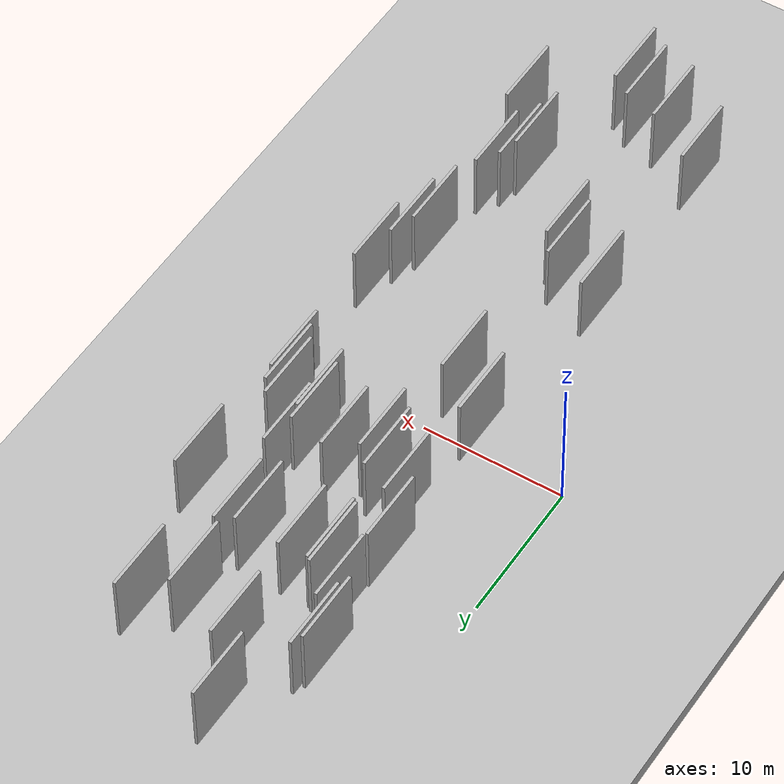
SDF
<?xml version="1.0" encoding="utf-8"?>

<sdf version="1.6">

   <world name="default">

      <gui fullscreen="0">

         <camera name="user_camera">

            <pose>-15 0 4.57585 0 0 0</pose>

            <view_controller>orbit</view_controller>

         </camera>

      </gui>

      <scene>

         <sky>

           <clouds>

             <speed>12</speed>

           </clouds>

         </sky>

         <ambient>0.4 0.4 0.4 1</ambient>

         <background>0.7 0.7 0.7 1</background>

         <shadows>1</shadows>

      </scene>

      <gravity>0 0 -9.8066</gravity>

      <magnetic_field>6e-06 2.3e-05 -4.2e-05</magnetic_field>

      <physics default="0" name="default_physics" type="ode">

         <ode>

            <solver>

               <type>quick</type>

               <iters>10</iters>

               <sor>1.0</sor>

               <use_dynamic_moi_rescaling>0</use_dynamic_moi_rescaling>

            </solver>

            <constraints>

               <cfm>0</cfm>

               <erp>0.2</erp>

               <contact_max_correcting_vel>100</contact_max_correcting_vel>

               <contact_surface_layer>0.001</contact_surface_layer>

            </constraints>

         </ode>

         <max_step_size>0.004</max_step_size>

         <real_time_factor>1</real_time_factor>

         <real_time_update_rate>250</real_time_update_rate>

      </physics>

      <light name="sun" type="directional">

         <cast_shadows>1</cast_shadows>

         <pose>0 0 10 0 0 0</pose>

         <diffuse>0.8 0.8 0.8 1</diffuse>

         <specular>0.2 0.2 0.2 1</specular>

         <attenuation>

            <range>1000</range>

            <constant>0.9</constant>

            <linear>0.01</linear>

            <quadratic>0.001</quadratic>

         </attenuation>

         <direction>-0.5 0.1 -0.9</direction>

      </light>

      <include>

         <name>ground_plane_1</name>

         <uri>model://HANNAS_ground_plane</uri>

         <pose>0 0 0  0 0 0</pose>

      </include>

      <include>

         <name>ground_plane_2</name>

         <uri>model://HANNAS_ground_plane</uri>

         <pose>100 0 0  0 0 0</pose>

      </include>

      <model name="HANNAS_wall_1">

         <static>1</static>

         <pose frame="">14.5631 23.2914 5.0 0.000000 0.000000 1.570796</pose>

         <link name="link">

            <pose frame="">0 0 2.50 0 0 0</pose>

            <collision name="collision">

               <geometry>

                  <box>

                     <size>5.00 0.2 5.00</size>

                  </box>

               </geometry>

               <max_contacts>10</max_contacts>

               <surface>

                  <contact>

                     <ode/>

                  </contact>

                  <bounce/>

                  <friction>

                     <torsional>

                        <ode/>

                     </torsional>

                     <ode/>

                  </friction>

               </surface>

            </collision>

            <visual name="visual">

               <cast_shadows>0</cast_shadows>

               <geometry>

                  <box>

                     <size>5.00 0.2 5.00</size>

                  </box>

               </geometry>

               <material>

                  <script>

                     <uri>model://HANNAS_wall/materials/scripts</uri>

                     <uri>model://HANNAS_wall/materials/textures</uri>

                     <name>vrc/HANNAS_wall</name>

                  </script>

               </material>

            </visual>

            <self_collide>0</self_collide>

            <enable_wind>0</enable_wind>

            <kinematic>0</kinematic>

         </link>

      </model>

      <model name="HANNAS_wall_2">

         <static>1</static>

         <pose frame="">6.7429 -11.4230 5.0 0.000000 0.000000 1.570796</pose>

         <link name="link">

            <pose frame="">0 0 2.50 0 0 0</pose>

            <collision name="collision">

               <geometry>

                  <box>

                     <size>5.00 0.2 5.00</size>

                  </box>

               </geometry>

               <max_contacts>10</max_contacts>

               <surface>

                  <contact>

                     <ode/>

                  </contact>

                  <bounce/>

                  <friction>

                     <torsional>

                        <ode/>

                     </torsional>

                     <ode/>

                  </friction>

               </surface>

            </collision>

            <visual name="visual">

               <cast_shadows>0</cast_shadows>

               <geometry>

                  <box>

                     <size>5.00 0.2 5.00</size>

                  </box>

               </geometry>

               <material>

                  <script>

                     <uri>model://HANNAS_wall/materials/scripts</uri>

                     <uri>model://HANNAS_wall/materials/textures</uri>

                     <name>vrc/HANNAS_wall</name>

                  </script>

               </material>

            </visual>

            <self_collide>0</self_collide>

            <enable_wind>0</enable_wind>

            <kinematic>0</kinematic>

         </link>

      </model>

      <model name="HANNAS_wall_3">

         <static>1</static>

         <pose frame="">4.2946 12.6466 5.0 0.000000 0.000000 1.570796</pose>

         <link name="link">

            <pose frame="">0 0 2.50 0 0 0</pose>

            <collision name="collision">

               <geometry>

                  <box>

                     <size>5.00 0.2 5.00</size>

                  </box>

               </geometry>

               <max_contacts>10</max_contacts>

               <surface>

                  <contact>

                     <ode/>

                  </contact>

                  <bounce/>

                  <friction>

                     <torsional>

                        <ode/>

                     </torsional>

                     <ode/>

                  </friction>

               </surface>

            </collision>

            <visual name="visual">

               <cast_shadows>0</cast_shadows>

               <geometry>

                  <box>

                     <size>5.00 0.2 5.00</size>

                  </box>

               </geometry>

               <material>

                  <script>

                     <uri>model://HANNAS_wall/materials/scripts</uri>

                     <uri>model://HANNAS_wall/materials/textures</uri>

                     <name>vrc/HANNAS_wall</name>

                  </script>

               </material>

            </visual>

            <self_collide>0</self_collide>

            <enable_wind>0</enable_wind>

            <kinematic>0</kinematic>

         </link>

      </model>

      <model name="HANNAS_wall_4">

         <static>1</static>

         <pose frame="">13.0444 6.7686 5.0 0.000000 0.000000 1.570796</pose>

         <link name="link">

            <pose frame="">0 0 2.50 0 0 0</pose>

            <collision name="collision">

               <geometry>

                  <box>

                     <size>5.00 0.2 5.00</size>

                  </box>

               </geometry>

               <max_contacts>10</max_contacts>

               <surface>

                  <contact>

                     <ode/>

                  </contact>

                  <bounce/>

                  <friction>

                     <torsional>

                        <ode/>

                     </torsional>

                     <ode/>

                  </friction>

               </surface>

            </collision>

            <visual name="visual">

               <cast_shadows>0</cast_shadows>

               <geometry>

                  <box>

                     <size>5.00 0.2 5.00</size>

                  </box>

               </geometry>

               <material>

                  <script>

                     <uri>model://HANNAS_wall/materials/scripts</uri>

                     <uri>model://HANNAS_wall/materials/textures</uri>

                     <name>vrc/HANNAS_wall</name>

                  </script>

               </material>

            </visual>

            <self_collide>0</self_collide>

            <enable_wind>0</enable_wind>

            <kinematic>0</kinematic>

         </link>

      </model>

      <model name="HANNAS_wall_5">

         <static>1</static>

         <pose frame="">8.2656 7.3176 5.0 0.000000 0.000000 1.570796</pose>

         <link name="link">

            <pose frame="">0 0 2.50 0 0 0</pose>

            <collision name="collision">

               <geometry>

                  <box>

                     <size>5.00 0.2 5.00</size>

                  </box>

               </geometry>

               <max_contacts>10</max_contacts>

               <surface>

                  <contact>

                     <ode/>

                  </contact>

                  <bounce/>

                  <friction>

                     <torsional>

                        <ode/>

                     </torsional>

                     <ode/>

                  </friction>

               </surface>

            </collision>

            <visual name="visual">

               <cast_shadows>0</cast_shadows>

               <geometry>

                  <box>

                     <size>5.00 0.2 5.00</size>

                  </box>

               </geometry>

               <material>

                  <script>

                     <uri>model://HANNAS_wall/materials/scripts</uri>

                     <uri>model://HANNAS_wall/materials/textures</uri>

                     <name>vrc/HANNAS_wall</name>

                  </script>

               </material>

            </visual>

            <self_collide>0</self_collide>

            <enable_wind>0</enable_wind>

            <kinematic>0</kinematic>

         </link>

      </model>

      <model name="HANNAS_wall_6">

         <static>1</static>

         <pose frame="">10.2420 8.4115 5.0 0.000000 0.000000 1.570796</pose>

         <link name="link">

            <pose frame="">0 0 2.50 0 0 0</pose>

            <collision name="collision">

               <geometry>

                  <box>

                     <size>5.00 0.2 5.00</size>

                  </box>

               </geometry>

               <max_contacts>10</max_contacts>

               <surface>

                  <contact>

                     <ode/>

                  </contact>

                  <bounce/>

                  <friction>

                     <torsional>

                        <ode/>

                     </torsional>

                     <ode/>

                  </friction>

               </surface>

            </collision>

            <visual name="visual">

               <cast_shadows>0</cast_shadows>

               <geometry>

                  <box>

                     <size>5.00 0.2 5.00</size>

                  </box>

               </geometry>

               <material>

                  <script>

                     <uri>model://HANNAS_wall/materials/scripts</uri>

                     <uri>model://HANNAS_wall/materials/textures</uri>

                     <name>vrc/HANNAS_wall</name>

                  </script>

               </material>

            </visual>

            <self_collide>0</self_collide>

            <enable_wind>0</enable_wind>

            <kinematic>0</kinematic>

         </link>

      </model>

      <model name="HANNAS_wall_7">

         <static>1</static>

         <pose frame="">15.1976 -9.4629 5.0 0.000000 0.000000 1.570796</pose>

         <link name="link">

            <pose frame="">0 0 2.50 0 0 0</pose>

            <collision name="collision">

               <geometry>

                  <box>

                     <size>5.00 0.2 5.00</size>

                  </box>

               </geometry>

               <max_contacts>10</max_contacts>

               <surface>

                  <contact>

                     <ode/>

                  </contact>

                  <bounce/>

                  <friction>

                     <torsional>

                        <ode/>

                     </torsional>

                     <ode/>

                  </friction>

               </surface>

            </collision>

            <visual name="visual">

               <cast_shadows>0</cast_shadows>

               <geometry>

                  <box>

                     <size>5.00 0.2 5.00</size>

                  </box>

               </geometry>

               <material>

                  <script>

                     <uri>model://HANNAS_wall/materials/scripts</uri>

                     <uri>model://HANNAS_wall/materials/textures</uri>

                     <name>vrc/HANNAS_wall</name>

                  </script>

               </material>

            </visual>

            <self_collide>0</self_collide>

            <enable_wind>0</enable_wind>

            <kinematic>0</kinematic>

         </link>

      </model>

      <model name="HANNAS_wall_8">

         <static>1</static>

         <pose frame="">10.8056 -26.3976 5.0 0.000000 0.000000 1.570796</pose>

         <link name="link">

            <pose frame="">0 0 2.50 0 0 0</pose>

            <collision name="collision">

               <geometry>

                  <box>

                     <size>5.00 0.2 5.00</size>

                  </box>

               </geometry>

               <max_contacts>10</max_contacts>

               <surface>

                  <contact>

                     <ode/>

                  </contact>

                  <bounce/>

                  <friction>

                     <torsional>

                        <ode/>

                     </torsional>

                     <ode/>

                  </friction>

               </surface>

            </collision>

            <visual name="visual">

               <cast_shadows>0</cast_shadows>

               <geometry>

                  <box>

                     <size>5.00 0.2 5.00</size>

                  </box>

               </geometry>

               <material>

                  <script>

                     <uri>model://HANNAS_wall/materials/scripts</uri>

                     <uri>model://HANNAS_wall/materials/textures</uri>

                     <name>vrc/HANNAS_wall</name>

                  </script>

               </material>

            </visual>

            <self_collide>0</self_collide>

            <enable_wind>0</enable_wind>

            <kinematic>0</kinematic>

         </link>

      </model>

      <model name="HANNAS_wall_9">

         <static>1</static>

         <pose frame="">6.0921 15.9930 5.0 0.000000 0.000000 1.570796</pose>

         <link name="link">

            <pose frame="">0 0 2.50 0 0 0</pose>

            <collision name="collision">

               <geometry>

                  <box>

                     <size>5.00 0.2 5.00</size>

                  </box>

               </geometry>

               <max_contacts>10</max_contacts>

               <surface>

                  <contact>

                     <ode/>

                  </contact>

                  <bounce/>

                  <friction>

                     <torsional>

                        <ode/>

                     </torsional>

                     <ode/>

                  </friction>

               </surface>

            </collision>

            <visual name="visual">

               <cast_shadows>0</cast_shadows>

               <geometry>

                  <box>

                     <size>5.00 0.2 5.00</size>

                  </box>

               </geometry>

               <material>

                  <script>

                     <uri>model://HANNAS_wall/materials/scripts</uri>

                     <uri>model://HANNAS_wall/materials/textures</uri>

                     <name>vrc/HANNAS_wall</name>

                  </script>

               </material>

            </visual>

            <self_collide>0</self_collide>

            <enable_wind>0</enable_wind>

            <kinematic>0</kinematic>

         </link>

      </model>

      <model name="HANNAS_wall_10">

         <static>1</static>

         <pose frame="">7.0727 -24.7977 5.0 0.000000 0.000000 1.570796</pose>

         <link name="link">

            <pose frame="">0 0 2.50 0 0 0</pose>

            <collision name="collision">

               <geometry>

                  <box>

                     <size>5.00 0.2 5.00</size>

                  </box>

               </geometry>

               <max_contacts>10</max_contacts>

               <surface>

                  <contact>

                     <ode/>

                  </contact>

                  <bounce/>

                  <friction>

                     <torsional>

                        <ode/>

                     </torsional>

                     <ode/>

                  </friction>

               </surface>

            </collision>

            <visual name="visual">

               <cast_shadows>0</cast_shadows>

               <geometry>

                  <box>

                     <size>5.00 0.2 5.00</size>

                  </box>

               </geometry>

               <material>

                  <script>

                     <uri>model://HANNAS_wall/materials/scripts</uri>

                     <uri>model://HANNAS_wall/materials/textures</uri>

                     <name>vrc/HANNAS_wall</name>

                  </script>

               </material>

            </visual>

            <self_collide>0</self_collide>

            <enable_wind>0</enable_wind>

            <kinematic>0</kinematic>

         </link>

      </model>

      <model name="HANNAS_wall_11">

         <static>1</static>

         <pose frame="">12.7846 7.7467 5.0 0.000000 0.000000 1.570796</pose>

         <link name="link">

            <pose frame="">0 0 2.50 0 0 0</pose>

            <collision name="collision">

               <geometry>

                  <box>

                     <size>5.00 0.2 5.00</size>

                  </box>

               </geometry>

               <max_contacts>10</max_contacts>

               <surface>

                  <contact>

                     <ode/>

                  </contact>

                  <bounce/>

                  <friction>

                     <torsional>

                        <ode/>

                     </torsional>

                     <ode/>

                  </friction>

               </surface>

            </collision>

            <visual name="visual">

               <cast_shadows>0</cast_shadows>

               <geometry>

                  <box>

                     <size>5.00 0.2 5.00</size>

                  </box>

               </geometry>

               <material>

                  <script>

                     <uri>model://HANNAS_wall/materials/scripts</uri>

                     <uri>model://HANNAS_wall/materials/textures</uri>

                     <name>vrc/HANNAS_wall</name>

                  </script>

               </material>

            </visual>

            <self_collide>0</self_collide>

            <enable_wind>0</enable_wind>

            <kinematic>0</kinematic>

         </link>

      </model>

      <model name="HANNAS_wall_12">

         <static>1</static>

         <pose frame="">12.0679 21.4258 5.0 0.000000 0.000000 1.570796</pose>

         <link name="link">

            <pose frame="">0 0 2.50 0 0 0</pose>

            <collision name="collision">

               <geometry>

                  <box>

                     <size>5.00 0.2 5.00</size>

                  </box>

               </geometry>

               <max_contacts>10</max_contacts>

               <surface>

                  <contact>

                     <ode/>

                  </contact>

                  <bounce/>

                  <friction>

                     <torsional>

                        <ode/>

                     </torsional>

                     <ode/>

                  </friction>

               </surface>

            </collision>

            <visual name="visual">

               <cast_shadows>0</cast_shadows>

               <geometry>

                  <box>

                     <size>5.00 0.2 5.00</size>

                  </box>

               </geometry>

               <material>

                  <script>

                     <uri>model://HANNAS_wall/materials/scripts</uri>

                     <uri>model://HANNAS_wall/materials/textures</uri>

                     <name>vrc/HANNAS_wall</name>

                  </script>

               </material>

            </visual>

            <self_collide>0</self_collide>

            <enable_wind>0</enable_wind>

            <kinematic>0</kinematic>

         </link>

      </model>

      <model name="HANNAS_wall_13">

         <static>1</static>

         <pose frame="">5.2970 9.3334 5.0 0.000000 0.000000 1.570796</pose>

         <link name="link">

            <pose frame="">0 0 2.50 0 0 0</pose>

            <collision name="collision">

               <geometry>

                  <box>

                     <size>5.00 0.2 5.00</size>

                  </box>

               </geometry>

               <max_contacts>10</max_contacts>

               <surface>

                  <contact>

                     <ode/>

                  </contact>

                  <bounce/>

                  <friction>

                     <torsional>

                        <ode/>

                     </torsional>

                     <ode/>

                  </friction>

               </surface>

            </collision>

            <visual name="visual">

               <cast_shadows>0</cast_shadows>

               <geometry>

                  <box>

                     <size>5.00 0.2 5.00</size>

                  </box>

               </geometry>

               <material>

                  <script>

                     <uri>model://HANNAS_wall/materials/scripts</uri>

                     <uri>model://HANNAS_wall/materials/textures</uri>

                     <name>vrc/HANNAS_wall</name>

                  </script>

               </material>

            </visual>

            <self_collide>0</self_collide>

            <enable_wind>0</enable_wind>

            <kinematic>0</kinematic>

         </link>

      </model>

      <model name="HANNAS_wall_14">

         <static>1</static>

         <pose frame="">7.2584 8.3794 5.0 0.000000 0.000000 1.570796</pose>

         <link name="link">

            <pose frame="">0 0 2.50 0 0 0</pose>

            <collision name="collision">

               <geometry>

                  <box>

                     <size>5.00 0.2 5.00</size>

                  </box>

               </geometry>

               <max_contacts>10</max_contacts>

               <surface>

                  <contact>

                     <ode/>

                  </contact>

                  <bounce/>

                  <friction>

                     <torsional>

                        <ode/>

                     </torsional>

                     <ode/>

                  </friction>

               </surface>

            </collision>

            <visual name="visual">

               <cast_shadows>0</cast_shadows>

               <geometry>

                  <box>

                     <size>5.00 0.2 5.00</size>

                  </box>

               </geometry>

               <material>

                  <script>

                     <uri>model://HANNAS_wall/materials/scripts</uri>

                     <uri>model://HANNAS_wall/materials/textures</uri>

                     <name>vrc/HANNAS_wall</name>

                  </script>

               </material>

            </visual>

            <self_collide>0</self_collide>

            <enable_wind>0</enable_wind>

            <kinematic>0</kinematic>

         </link>

      </model>

      <model name="HANNAS_wall_15">

         <static>1</static>

         <pose frame="">8.0335 23.1206 5.0 0.000000 0.000000 1.570796</pose>

         <link name="link">

            <pose frame="">0 0 2.50 0 0 0</pose>

            <collision name="collision">

               <geometry>

                  <box>

                     <size>5.00 0.2 5.00</size>

                  </box>

               </geometry>

               <max_contacts>10</max_contacts>

               <surface>

                  <contact>

                     <ode/>

                  </contact>

                  <bounce/>

                  <friction>

                     <torsional>

                        <ode/>

                     </torsional>

                     <ode/>

                  </friction>

               </surface>

            </collision>

            <visual name="visual">

               <cast_shadows>0</cast_shadows>

               <geometry>

                  <box>

                     <size>5.00 0.2 5.00</size>

                  </box>

               </geometry>

               <material>

                  <script>

                     <uri>model://HANNAS_wall/materials/scripts</uri>

                     <uri>model://HANNAS_wall/materials/textures</uri>

                     <name>vrc/HANNAS_wall</name>

                  </script>

               </material>

            </visual>

            <self_collide>0</self_collide>

            <enable_wind>0</enable_wind>

            <kinematic>0</kinematic>

         </link>

      </model>

      <model name="HANNAS_wall_16">

         <static>1</static>

         <pose frame="">13.5373 -16.8339 5.0 0.000000 0.000000 1.570796</pose>

         <link name="link">

            <pose frame="">0 0 2.50 0 0 0</pose>

            <collision name="collision">

               <geometry>

                  <box>

                     <size>5.00 0.2 5.00</size>

                  </box>

               </geometry>

               <max_contacts>10</max_contacts>

               <surface>

                  <contact>

                     <ode/>

                  </contact>

                  <bounce/>

                  <friction>

                     <torsional>

                        <ode/>

                     </torsional>

                     <ode/>

                  </friction>

               </surface>

            </collision>

            <visual name="visual">

               <cast_shadows>0</cast_shadows>

               <geometry>

                  <box>

                     <size>5.00 0.2 5.00</size>

                  </box>

               </geometry>

               <material>

                  <script>

                     <uri>model://HANNAS_wall/materials/scripts</uri>

                     <uri>model://HANNAS_wall/materials/textures</uri>

                     <name>vrc/HANNAS_wall</name>

                  </script>

               </material>

            </visual>

            <self_collide>0</self_collide>

            <enable_wind>0</enable_wind>

            <kinematic>0</kinematic>

         </link>

      </model>

      <model name="HANNAS_wall_17">

         <static>1</static>

         <pose frame="">12.4964 16.2960 5.0 0.000000 0.000000 1.570796</pose>

         <link name="link">

            <pose frame="">0 0 2.50 0 0 0</pose>

            <collision name="collision">

               <geometry>

                  <box>

                     <size>5.00 0.2 5.00</size>

                  </box>

               </geometry>

               <max_contacts>10</max_contacts>

               <surface>

                  <contact>

                     <ode/>

                  </contact>

                  <bounce/>

                  <friction>

                     <torsional>

                        <ode/>

                     </torsional>

                     <ode/>

                  </friction>

               </surface>

            </collision>

            <visual name="visual">

               <cast_shadows>0</cast_shadows>

               <geometry>

                  <box>

                     <size>5.00 0.2 5.00</size>

                  </box>

               </geometry>

               <material>

                  <script>

                     <uri>model://HANNAS_wall/materials/scripts</uri>

                     <uri>model://HANNAS_wall/materials/textures</uri>

                     <name>vrc/HANNAS_wall</name>

                  </script>

               </material>

            </visual>

            <self_collide>0</self_collide>

            <enable_wind>0</enable_wind>

            <kinematic>0</kinematic>

         </link>

      </model>

      <model name="HANNAS_wall_18">

         <static>1</static>

         <pose frame="">13.1670 -18.1890 5.0 0.000000 0.000000 1.570796</pose>

         <link name="link">

            <pose frame="">0 0 2.50 0 0 0</pose>

            <collision name="collision">

               <geometry>

                  <box>

                     <size>5.00 0.2 5.00</size>

                  </box>

               </geometry>

               <max_contacts>10</max_contacts>

               <surface>

                  <contact>

                     <ode/>

                  </contact>

                  <bounce/>

                  <friction>

                     <torsional>

                        <ode/>

                     </torsional>

                     <ode/>

                  </friction>

               </surface>

            </collision>

            <visual name="visual">

               <cast_shadows>0</cast_shadows>

               <geometry>

                  <box>

                     <size>5.00 0.2 5.00</size>

                  </box>

               </geometry>

               <material>

                  <script>

                     <uri>model://HANNAS_wall/materials/scripts</uri>

                     <uri>model://HANNAS_wall/materials/textures</uri>

                     <name>vrc/HANNAS_wall</name>

                  </script>

               </material>

            </visual>

            <self_collide>0</self_collide>

            <enable_wind>0</enable_wind>

            <kinematic>0</kinematic>

         </link>

      </model>

      <model name="HANNAS_wall_19">

         <static>1</static>

         <pose frame="">4.4450 17.7825 5.0 0.000000 0.000000 1.570796</pose>

         <link name="link">

            <pose frame="">0 0 2.50 0 0 0</pose>

            <collision name="collision">

               <geometry>

                  <box>

                     <size>5.00 0.2 5.00</size>

                  </box>

               </geometry>

               <max_contacts>10</max_contacts>

               <surface>

                  <contact>

                     <ode/>

                  </contact>

                  <bounce/>

                  <friction>

                     <torsional>

                        <ode/>

                     </torsional>

                     <ode/>

                  </friction>

               </surface>

            </collision>

            <visual name="visual">

               <cast_shadows>0</cast_shadows>

               <geometry>

                  <box>

                     <size>5.00 0.2 5.00</size>

                  </box>

               </geometry>

               <material>

                  <script>

                     <uri>model://HANNAS_wall/materials/scripts</uri>

                     <uri>model://HANNAS_wall/materials/textures</uri>

                     <name>vrc/HANNAS_wall</name>

                  </script>

               </material>

            </visual>

            <self_collide>0</self_collide>

            <enable_wind>0</enable_wind>

            <kinematic>0</kinematic>

         </link>

      </model>

      <model name="HANNAS_wall_20">

         <static>1</static>

         <pose frame="">16.7213 14.0943 5.0 0.000000 0.000000 1.570796</pose>

         <link name="link">

            <pose frame="">0 0 2.50 0 0 0</pose>

            <collision name="collision">

               <geometry>

                  <box>

                     <size>5.00 0.2 5.00</size>

                  </box>

               </geometry>

               <max_contacts>10</max_contacts>

               <surface>

                  <contact>

                     <ode/>

                  </contact>

                  <bounce/>

                  <friction>

                     <torsional>

                        <ode/>

                     </torsional>

                     <ode/>

                  </friction>

               </surface>

            </collision>

            <visual name="visual">

               <cast_shadows>0</cast_shadows>

               <geometry>

                  <box>

                     <size>5.00 0.2 5.00</size>

                  </box>

               </geometry>

               <material>

                  <script>

                     <uri>model://HANNAS_wall/materials/scripts</uri>

                     <uri>model://HANNAS_wall/materials/textures</uri>

                     <name>vrc/HANNAS_wall</name>

                  </script>

               </material>

            </visual>

            <self_collide>0</self_collide>

            <enable_wind>0</enable_wind>

            <kinematic>0</kinematic>

         </link>

      </model>

      <model name="HANNAS_wall_21">

         <static>1</static>

         <pose frame="">15.7364 6.0768 5.0 0.000000 0.000000 1.570796</pose>

         <link name="link">

            <pose frame="">0 0 2.50 0 0 0</pose>

            <collision name="collision">

               <geometry>

                  <box>

                     <size>5.00 0.2 5.00</size>

                  </box>

               </geometry>

               <max_contacts>10</max_contacts>

               <surface>

                  <contact>

                     <ode/>

                  </contact>

                  <bounce/>

                  <friction>

                     <torsional>

                        <ode/>

                     </torsional>

                     <ode/>

                  </friction>

               </surface>

            </collision>

            <visual name="visual">

               <cast_shadows>0</cast_shadows>

               <geometry>

                  <box>

                     <size>5.00 0.2 5.00</size>

                  </box>

               </geometry>

               <material>

                  <script>

                     <uri>model://HANNAS_wall/materials/scripts</uri>

                     <uri>model://HANNAS_wall/materials/textures</uri>

                     <name>vrc/HANNAS_wall</name>

                  </script>

               </material>

            </visual>

            <self_collide>0</self_collide>

            <enable_wind>0</enable_wind>

            <kinematic>0</kinematic>

         </link>

      </model>

      <model name="HANNAS_wall_22">

         <static>1</static>

         <pose frame="">9.4288 -25.4288 5.0 0.000000 0.000000 1.570796</pose>

         <link name="link">

            <pose frame="">0 0 2.50 0 0 0</pose>

            <collision name="collision">

               <geometry>

                  <box>

                     <size>5.00 0.2 5.00</size>

                  </box>

               </geometry>

               <max_contacts>10</max_contacts>

               <surface>

                  <contact>

                     <ode/>

                  </contact>

                  <bounce/>

                  <friction>

                     <torsional>

                        <ode/>

                     </torsional>

                     <ode/>

                  </friction>

               </surface>

            </collision>

            <visual name="visual">

               <cast_shadows>0</cast_shadows>

               <geometry>

                  <box>

                     <size>5.00 0.2 5.00</size>

                  </box>

               </geometry>

               <material>

                  <script>

                     <uri>model://HANNAS_wall/materials/scripts</uri>

                     <uri>model://HANNAS_wall/materials/textures</uri>

                     <name>vrc/HANNAS_wall</name>

                  </script>

               </material>

            </visual>

            <self_collide>0</self_collide>

            <enable_wind>0</enable_wind>

            <kinematic>0</kinematic>

         </link>

      </model>

      <model name="HANNAS_wall_23">

         <static>1</static>

         <pose frame="">11.3953 15.7597 5.0 0.000000 0.000000 1.570796</pose>

         <link name="link">

            <pose frame="">0 0 2.50 0 0 0</pose>

            <collision name="collision">

               <geometry>

                  <box>

                     <size>5.00 0.2 5.00</size>

                  </box>

               </geometry>

               <max_contacts>10</max_contacts>

               <surface>

                  <contact>

                     <ode/>

                  </contact>

                  <bounce/>

                  <friction>

                     <torsional>

                        <ode/>

                     </torsional>

                     <ode/>

                  </friction>

               </surface>

            </collision>

            <visual name="visual">

               <cast_shadows>0</cast_shadows>

               <geometry>

                  <box>

                     <size>5.00 0.2 5.00</size>

                  </box>

               </geometry>

               <material>

                  <script>

                     <uri>model://HANNAS_wall/materials/scripts</uri>

                     <uri>model://HANNAS_wall/materials/textures</uri>

                     <name>vrc/HANNAS_wall</name>

                  </script>

               </material>

            </visual>

            <self_collide>0</self_collide>

            <enable_wind>0</enable_wind>

            <kinematic>0</kinematic>

         </link>

      </model>

      <model name="HANNAS_wall_24">

         <static>1</static>

         <pose frame="">14.4527 -15.5074 5.0 0.000000 0.000000 1.570796</pose>

         <link name="link">

            <pose frame="">0 0 2.50 0 0 0</pose>

            <collision name="collision">

               <geometry>

                  <box>

                     <size>5.00 0.2 5.00</size>

                  </box>

               </geometry>

               <max_contacts>10</max_contacts>

               <surface>

                  <contact>

                     <ode/>

                  </contact>

                  <bounce/>

                  <friction>

                     <torsional>

                        <ode/>

                     </torsional>

                     <ode/>

                  </friction>

               </surface>

            </collision>

            <visual name="visual">

               <cast_shadows>0</cast_shadows>

               <geometry>

                  <box>

                     <size>5.00 0.2 5.00</size>

                  </box>

               </geometry>

               <material>

                  <script>

                     <uri>model://HANNAS_wall/materials/scripts</uri>

                     <uri>model://HANNAS_wall/materials/textures</uri>

                     <name>vrc/HANNAS_wall</name>

                  </script>

               </material>

            </visual>

            <self_collide>0</self_collide>

            <enable_wind>0</enable_wind>

            <kinematic>0</kinematic>

         </link>

      </model>

      <model name="HANNAS_wall_25">

         <static>1</static>

         <pose frame="">13.2606 9.9433 5.0 0.000000 0.000000 1.570796</pose>

         <link name="link">

            <pose frame="">0 0 2.50 0 0 0</pose>

            <collision name="collision">

               <geometry>

                  <box>

                     <size>5.00 0.2 5.00</size>

                  </box>

               </geometry>

               <max_contacts>10</max_contacts>

               <surface>

                  <contact>

                     <ode/>

                  </contact>

                  <bounce/>

                  <friction>

                     <torsional>

                        <ode/>

                     </torsional>

                     <ode/>

                  </friction>

               </surface>

            </collision>

            <visual name="visual">

               <cast_shadows>0</cast_shadows>

               <geometry>

                  <box>

                     <size>5.00 0.2 5.00</size>

                  </box>

               </geometry>

               <material>

                  <script>

                     <uri>model://HANNAS_wall/materials/scripts</uri>

                     <uri>model://HANNAS_wall/materials/textures</uri>

                     <name>vrc/HANNAS_wall</name>

                  </script>

               </material>

            </visual>

            <self_collide>0</self_collide>

            <enable_wind>0</enable_wind>

            <kinematic>0</kinematic>

         </link>

      </model>

      <model name="HANNAS_wall_26">

         <static>1</static>

         <pose frame="">16.6094 -4.9504 5.0 0.000000 0.000000 1.570796</pose>

         <link name="link">

            <pose frame="">0 0 2.50 0 0 0</pose>

            <collision name="collision">

               <geometry>

                  <box>

                     <size>5.00 0.2 5.00</size>

                  </box>

               </geometry>

               <max_contacts>10</max_contacts>

               <surface>

                  <contact>

                     <ode/>

                  </contact>

                  <bounce/>

                  <friction>

                     <torsional>

                        <ode/>

                     </torsional>

                     <ode/>

                  </friction>

               </surface>

            </collision>

            <visual name="visual">

               <cast_shadows>0</cast_shadows>

               <geometry>

                  <box>

                     <size>5.00 0.2 5.00</size>

                  </box>

               </geometry>

               <material>

                  <script>

                     <uri>model://HANNAS_wall/materials/scripts</uri>

                     <uri>model://HANNAS_wall/materials/textures</uri>

                     <name>vrc/HANNAS_wall</name>

                  </script>

               </material>

            </visual>

            <self_collide>0</self_collide>

            <enable_wind>0</enable_wind>

            <kinematic>0</kinematic>

         </link>

      </model>

      <model name="HANNAS_wall_27">

         <static>1</static>

         <pose frame="">3.7172 -10.3448 5.0 0.000000 0.000000 1.570796</pose>

         <link name="link">

            <pose frame="">0 0 2.50 0 0 0</pose>

            <collision name="collision">

               <geometry>

                  <box>

                     <size>5.00 0.2 5.00</size>

                  </box>

               </geometry>

               <max_contacts>10</max_contacts>

               <surface>

                  <contact>

                     <ode/>

                  </contact>

                  <bounce/>

                  <friction>

                     <torsional>

                        <ode/>

                     </torsional>

                     <ode/>

                  </friction>

               </surface>

            </collision>

            <visual name="visual">

               <cast_shadows>0</cast_shadows>

               <geometry>

                  <box>

                     <size>5.00 0.2 5.00</size>

                  </box>

               </geometry>

               <material>

                  <script>

                     <uri>model://HANNAS_wall/materials/scripts</uri>

                     <uri>model://HANNAS_wall/materials/textures</uri>

                     <name>vrc/HANNAS_wall</name>

                  </script>

               </material>

            </visual>

            <self_collide>0</self_collide>

            <enable_wind>0</enable_wind>

            <kinematic>0</kinematic>

         </link>

      </model>

      <model name="HANNAS_wall_28">

         <static>1</static>

         <pose frame="">7.4066 -0.4068 5.0 0.000000 0.000000 1.570796</pose>

         <link name="link">

            <pose frame="">0 0 2.50 0 0 0</pose>

            <collision name="collision">

               <geometry>

                  <box>

                     <size>5.00 0.2 5.00</size>

                  </box>

               </geometry>

               <max_contacts>10</max_contacts>

               <surface>

                  <contact>

                     <ode/>

                  </contact>

                  <bounce/>

                  <friction>

                     <torsional>

                        <ode/>

                     </torsional>

                     <ode/>

                  </friction>

               </surface>

            </collision>

            <visual name="visual">

               <cast_shadows>0</cast_shadows>

               <geometry>

                  <box>

                     <size>5.00 0.2 5.00</size>

                  </box>

               </geometry>

               <material>

                  <script>

                     <uri>model://HANNAS_wall/materials/scripts</uri>

                     <uri>model://HANNAS_wall/materials/textures</uri>

                     <name>vrc/HANNAS_wall</name>

                  </script>

               </material>

            </visual>

            <self_collide>0</self_collide>

            <enable_wind>0</enable_wind>

            <kinematic>0</kinematic>

         </link>

      </model>

      <model name="HANNAS_wall_29">

         <static>1</static>

         <pose frame="">3.7788 -22.6810 5.0 0.000000 0.000000 1.570796</pose>

         <link name="link">

            <pose frame="">0 0 2.50 0 0 0</pose>

            <collision name="collision">

               <geometry>

                  <box>

                     <size>5.00 0.2 5.00</size>

                  </box>

               </geometry>

               <max_contacts>10</max_contacts>

               <surface>

                  <contact>

                     <ode/>

                  </contact>

                  <bounce/>

                  <friction>

                     <torsional>

                        <ode/>

                     </torsional>

                     <ode/>

                  </friction>

               </surface>

            </collision>

            <visual name="visual">

               <cast_shadows>0</cast_shadows>

               <geometry>

                  <box>

                     <size>5.00 0.2 5.00</size>

                  </box>

               </geometry>

               <material>

                  <script>

                     <uri>model://HANNAS_wall/materials/scripts</uri>

                     <uri>model://HANNAS_wall/materials/textures</uri>

                     <name>vrc/HANNAS_wall</name>

                  </script>

               </material>

            </visual>

            <self_collide>0</self_collide>

            <enable_wind>0</enable_wind>

            <kinematic>0</kinematic>

         </link>

      </model>

      <model name="HANNAS_wall_30">

         <static>1</static>

         <pose frame="">6.3471 15.8164 5.0 0.000000 0.000000 1.570796</pose>

         <link name="link">

            <pose frame="">0 0 2.50 0 0 0</pose>

            <collision name="collision">

               <geometry>

                  <box>

                     <size>5.00 0.2 5.00</size>

                  </box>

               </geometry>

               <max_contacts>10</max_contacts>

               <surface>

                  <contact>

                     <ode/>

                  </contact>

                  <bounce/>

                  <friction>

                     <torsional>

                        <ode/>

                     </torsional>

                     <ode/>

                  </friction>

               </surface>

            </collision>

            <visual name="visual">

               <cast_shadows>0</cast_shadows>

               <geometry>

                  <box>

                     <size>5.00 0.2 5.00</size>

                  </box>

               </geometry>

               <material>

                  <script>

                     <uri>model://HANNAS_wall/materials/scripts</uri>

                     <uri>model://HANNAS_wall/materials/textures</uri>

                     <name>vrc/HANNAS_wall</name>

                  </script>

               </material>

            </visual>

            <self_collide>0</self_collide>

            <enable_wind>0</enable_wind>

            <kinematic>0</kinematic>

         </link>

      </model>

      <model name="HANNAS_wall_31">

         <static>1</static>

         <pose frame="">15.1636 6.9431 5.0 0.000000 0.000000 1.570796</pose>

         <link name="link">

            <pose frame="">0 0 2.50 0 0 0</pose>

            <collision name="collision">

               <geometry>

                  <box>

                     <size>5.00 0.2 5.00</size>

                  </box>

               </geometry>

               <max_contacts>10</max_contacts>

               <surface>

                  <contact>

                     <ode/>

                  </contact>

                  <bounce/>

                  <friction>

                     <torsional>

                        <ode/>

                     </torsional>

                     <ode/>

                  </friction>

               </surface>

            </collision>

            <visual name="visual">

               <cast_shadows>0</cast_shadows>

               <geometry>

                  <box>

                     <size>5.00 0.2 5.00</size>

                  </box>

               </geometry>

               <material>

                  <script>

                     <uri>model://HANNAS_wall/materials/scripts</uri>

                     <uri>model://HANNAS_wall/materials/textures</uri>

                     <name>vrc/HANNAS_wall</name>

                  </script>

               </material>

            </visual>

            <self_collide>0</self_collide>

            <enable_wind>0</enable_wind>

            <kinematic>0</kinematic>

         </link>

      </model>

      <model name="HANNAS_wall_32">

         <static>1</static>

         <pose frame="">7.6553 -12.8101 5.0 0.000000 0.000000 1.570796</pose>

         <link name="link">

            <pose frame="">0 0 2.50 0 0 0</pose>

            <collision name="collision">

               <geometry>

                  <box>

                     <size>5.00 0.2 5.00</size>

                  </box>

               </geometry>

               <max_contacts>10</max_contacts>

               <surface>

                  <contact>

                     <ode/>

                  </contact>

                  <bounce/>

                  <friction>

                     <torsional>

                        <ode/>

                     </torsional>

                     <ode/>

                  </friction>

               </surface>

            </collision>

            <visual name="visual">

               <cast_shadows>0</cast_shadows>

               <geometry>

                  <box>

                     <size>5.00 0.2 5.00</size>

                  </box>

               </geometry>

               <material>

                  <script>

                     <uri>model://HANNAS_wall/materials/scripts</uri>

                     <uri>model://HANNAS_wall/materials/textures</uri>

                     <name>vrc/HANNAS_wall</name>

                  </script>

               </material>

            </visual>

            <self_collide>0</self_collide>

            <enable_wind>0</enable_wind>

            <kinematic>0</kinematic>

         </link>

      </model>

      <model name="HANNAS_wall_33">

         <static>1</static>

         <pose frame="">3.4476 20.6826 5.0 0.000000 0.000000 1.570796</pose>

         <link name="link">

            <pose frame="">0 0 2.50 0 0 0</pose>

            <collision name="collision">

               <geometry>

                  <box>

                     <size>5.00 0.2 5.00</size>

                  </box>

               </geometry>

               <max_contacts>10</max_contacts>

               <surface>

                  <contact>

                     <ode/>

                  </contact>

                  <bounce/>

                  <friction>

                     <torsional>

                        <ode/>

                     </torsional>

                     <ode/>

                  </friction>

               </surface>

            </collision>

            <visual name="visual">

               <cast_shadows>0</cast_shadows>

               <geometry>

                  <box>

                     <size>5.00 0.2 5.00</size>

                  </box>

               </geometry>

               <material>

                  <script>

                     <uri>model://HANNAS_wall/materials/scripts</uri>

                     <uri>model://HANNAS_wall/materials/textures</uri>

                     <name>vrc/HANNAS_wall</name>

                  </script>

               </material>

            </visual>

            <self_collide>0</self_collide>

            <enable_wind>0</enable_wind>

            <kinematic>0</kinematic>

         </link>

      </model>

      <model name="HANNAS_wall_34">

         <static>1</static>

         <pose frame="">6.4671 27.1836 5.0 0.000000 0.000000 1.570796</pose>

         <link name="link">

            <pose frame="">0 0 2.50 0 0 0</pose>

            <collision name="collision">

               <geometry>

                  <box>

                     <size>5.00 0.2 5.00</size>

                  </box>

               </geometry>

               <max_contacts>10</max_contacts>

               <surface>

                  <contact>

                     <ode/>

                  </contact>

                  <bounce/>

                  <friction>

                     <torsional>

                        <ode/>

                     </torsional>

                     <ode/>

                  </friction>

               </surface>

            </collision>

            <visual name="visual">

               <cast_shadows>0</cast_shadows>

               <geometry>

                  <box>

                     <size>5.00 0.2 5.00</size>

                  </box>

               </geometry>

               <material>

                  <script>

                     <uri>model://HANNAS_wall/materials/scripts</uri>

                     <uri>model://HANNAS_wall/materials/textures</uri>

                     <name>vrc/HANNAS_wall</name>

                  </script>

               </material>

            </visual>

            <self_collide>0</self_collide>

            <enable_wind>0</enable_wind>

            <kinematic>0</kinematic>

         </link>

      </model>

      <model name="HANNAS_wall_35">

         <static>1</static>

         <pose frame="">4.7862 1.8454 5.0 0.000000 0.000000 1.570796</pose>

         <link name="link">

            <pose frame="">0 0 2.50 0 0 0</pose>

            <collision name="collision">

               <geometry>

                  <box>

                     <size>5.00 0.2 5.00</size>

                  </box>

               </geometry>

               <max_contacts>10</max_contacts>

               <surface>

                  <contact>

                     <ode/>

                  </contact>

                  <bounce/>

                  <friction>

                     <torsional>

                        <ode/>

                     </torsional>

                     <ode/>

                  </friction>

               </surface>

            </collision>

            <visual name="visual">

               <cast_shadows>0</cast_shadows>

               <geometry>

                  <box>

                     <size>5.00 0.2 5.00</size>

                  </box>

               </geometry>

               <material>

                  <script>

                     <uri>model://HANNAS_wall/materials/scripts</uri>

                     <uri>model://HANNAS_wall/materials/textures</uri>

                     <name>vrc/HANNAS_wall</name>

                  </script>

               </material>

            </visual>

            <self_collide>0</self_collide>

            <enable_wind>0</enable_wind>

            <kinematic>0</kinematic>

         </link>

      </model>

      <model name="HANNAS_wall_36">

         <static>1</static>

         <pose frame="">8.3004 15.8912 5.0 0.000000 0.000000 1.570796</pose>

         <link name="link">

            <pose frame="">0 0 2.50 0 0 0</pose>

            <collision name="collision">

               <geometry>

                  <box>

                     <size>5.00 0.2 5.00</size>

                  </box>

               </geometry>

               <max_contacts>10</max_contacts>

               <surface>

                  <contact>

                     <ode/>

                  </contact>

                  <bounce/>

                  <friction>

                     <torsional>

                        <ode/>

                     </torsional>

                     <ode/>

                  </friction>

               </surface>

            </collision>

            <visual name="visual">

               <cast_shadows>0</cast_shadows>

               <geometry>

                  <box>

                     <size>5.00 0.2 5.00</size>

                  </box>

               </geometry>

               <material>

                  <script>

                     <uri>model://HANNAS_wall/materials/scripts</uri>

                     <uri>model://HANNAS_wall/materials/textures</uri>

                     <name>vrc/HANNAS_wall</name>

                  </script>

               </material>

            </visual>

            <self_collide>0</self_collide>

            <enable_wind>0</enable_wind>

            <kinematic>0</kinematic>

         </link>

      </model>

      <model name="HANNAS_wall_37">

         <static>1</static>

         <pose frame="">15.7973 -7.7770 5.0 0.000000 0.000000 1.570796</pose>

         <link name="link">

            <pose frame="">0 0 2.50 0 0 0</pose>

            <collision name="collision">

               <geometry>

                  <box>

                     <size>5.00 0.2 5.00</size>

                  </box>

               </geometry>

               <max_contacts>10</max_contacts>

               <surface>

                  <contact>

                     <ode/>

                  </contact>

                  <bounce/>

                  <friction>

                     <torsional>

                        <ode/>

                     </torsional>

                     <ode/>

                  </friction>

               </surface>

            </collision>

            <visual name="visual">

               <cast_shadows>0</cast_shadows>

               <geometry>

                  <box>

                     <size>5.00 0.2 5.00</size>

                  </box>

               </geometry>

               <material>

                  <script>

                     <uri>model://HANNAS_wall/materials/scripts</uri>

                     <uri>model://HANNAS_wall/materials/textures</uri>

                     <name>vrc/HANNAS_wall</name>

                  </script>

               </material>

            </visual>

            <self_collide>0</self_collide>

            <enable_wind>0</enable_wind>

            <kinematic>0</kinematic>

         </link>

      </model>

      <model name="HANNAS_wall_38">

         <static>1</static>

         <pose frame="">15.7546 -21.3292 5.0 0.000000 0.000000 1.570796</pose>

         <link name="link">

            <pose frame="">0 0 2.50 0 0 0</pose>

            <collision name="collision">

               <geometry>

                  <box>

                     <size>5.00 0.2 5.00</size>

                  </box>

               </geometry>

               <max_contacts>10</max_contacts>

               <surface>

                  <contact>

                     <ode/>

                  </contact>

                  <bounce/>

                  <friction>

                     <torsional>

                        <ode/>

                     </torsional>

                     <ode/>

                  </friction>

               </surface>

            </collision>

            <visual name="visual">

               <cast_shadows>0</cast_shadows>

               <geometry>

                  <box>

                     <size>5.00 0.2 5.00</size>

                  </box>

               </geometry>

               <material>

                  <script>

                     <uri>model://HANNAS_wall/materials/scripts</uri>

                     <uri>model://HANNAS_wall/materials/textures</uri>

                     <name>vrc/HANNAS_wall</name>

                  </script>

               </material>

            </visual>

            <self_collide>0</self_collide>

            <enable_wind>0</enable_wind>

            <kinematic>0</kinematic>

         </link>

      </model>

      <model name="HANNAS_wall_39">

         <static>1</static>

         <pose frame="">16.0304 5.0398 5.0 0.000000 0.000000 1.570796</pose>

         <link name="link">

            <pose frame="">0 0 2.50 0 0 0</pose>

            <collision name="collision">

               <geometry>

                  <box>

                     <size>5.00 0.2 5.00</size>

                  </box>

               </geometry>

               <max_contacts>10</max_contacts>

               <surface>

                  <contact>

                     <ode/>

                  </contact>

                  <bounce/>

                  <friction>

                     <torsional>

                        <ode/>

                     </torsional>

                     <ode/>

                  </friction>

               </surface>

            </collision>

            <visual name="visual">

               <cast_shadows>0</cast_shadows>

               <geometry>

                  <box>

                     <size>5.00 0.2 5.00</size>

                  </box>

               </geometry>

               <material>

                  <script>

                     <uri>model://HANNAS_wall/materials/scripts</uri>

                     <uri>model://HANNAS_wall/materials/textures</uri>

                     <name>vrc/HANNAS_wall</name>

                  </script>

               </material>

            </visual>

            <self_collide>0</self_collide>

            <enable_wind>0</enable_wind>

            <kinematic>0</kinematic>

         </link>

      </model>

      <model name="HANNAS_wall_40">

         <static>1</static>

         <pose frame="">3.7903 21.4009 5.0 0.000000 0.000000 1.570796</pose>

         <link name="link">

            <pose frame="">0 0 2.50 0 0 0</pose>

            <collision name="collision">

               <geometry>

                  <box>

                     <size>5.00 0.2 5.00</size>

                  </box>

               </geometry>

               <max_contacts>10</max_contacts>

               <surface>

                  <contact>

                     <ode/>

                  </contact>

                  <bounce/>

                  <friction>

                     <torsional>

                        <ode/>

                     </torsional>

                     <ode/>

                  </friction>

               </surface>

            </collision>

            <visual name="visual">

               <cast_shadows>0</cast_shadows>

               <geometry>

                  <box>

                     <size>5.00 0.2 5.00</size>

                  </box>

               </geometry>

               <material>

                  <script>

                     <uri>model://HANNAS_wall/materials/scripts</uri>

                     <uri>model://HANNAS_wall/materials/textures</uri>

                     <name>vrc/HANNAS_wall</name>

                  </script>

               </material>

            </visual>

            <self_collide>0</self_collide>

            <enable_wind>0</enable_wind>

            <kinematic>0</kinematic>

         </link>

      </model>

   </world>

</sdf>
